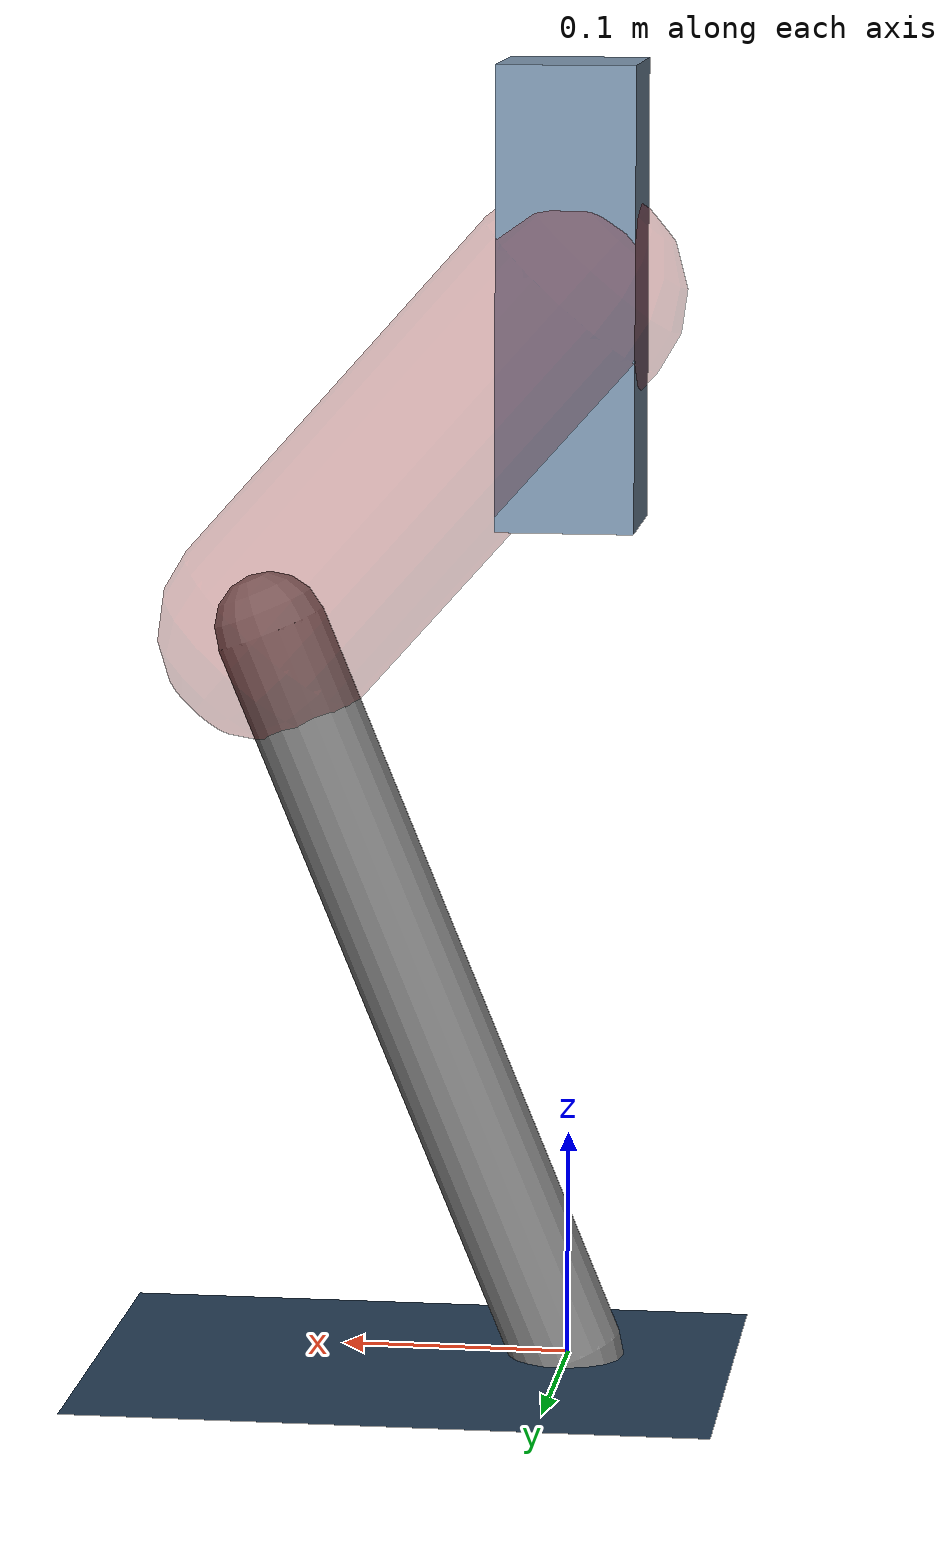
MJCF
<mujoco model="Hopper2D">
	<compiler inertiafromgeom="true" angle="radian" />
	<option timestep="0.001" integrator="implicit" cone="elliptic" solver="Newton" tolerance="1e-10" />

	<default>
		<geom contype="1" conaffinity="1" condim="3" friction="2 0.005 0.0001" solref="0.005 1" />
		<joint limited="true" damping="0.1" />
	</default>

	<asset>
		<texture name="skybox" type="skybox" builtin="gradient" rgb1=".4 .6 .8" rgb2="0 0 0" width="800" height="800" />
		<texture name="grid" type="2d" builtin="checker" rgb1=".1 .2 .3" rgb2=".2 .3 .4" width="300" height="300" mark="edge" markrgb=".2 .3 .4" />
		<material name="ground" texture="grid" texrepeat="1 1" texuniform="true" reflectance="0.1" />
		<material name="leg" rgba="0.5 0.6 0.7 1" />
	</asset>

	<worldbody>

		<geom name="floor" type="plane" size="5 5 0.25" material="ground" />

		<light directional="false" diffuse="0.8 0.8 0.8" specular="0.3 0.3 0.3" pos="0 0 2" dir="0 0 -1" />
		<light mode="targetbodycom" target="base" directional="false" diffuse="0.8 0.8 0.8" specular="0.3 0.3 0.3" pos="0 0 2" dir="0 0 -1" />

		<camera name="fixed" pos="0 -2 1" xyaxes="1 0 0 0 0 1" />
		<camera name="tracking" mode="trackcom" pos="0 -3 1" />

		<body name="root" pos="0 0 0.47079542838550154">
			<joint name="slide_x" type="slide" axis="1 0 0" range="-100 100" />
			<joint name="slide_z" type="slide" axis="0 0 1" range="0 10" />

			<body name="base" pos="0 0 0">
				<geom name="torso" type="box" size="0.03 0.03 0.1" mass="1.665" material="leg" />

				<body name="link1" pos="0 0 0" euler="0 0.8426157380698909 0">
					<joint type="hinge" axis="0 -1 0" pos="0 0 0" name="hinge1" limited="true" range="-3.14 3.14" stiffness="0" damping="0.1" />
					<geom name="thigh" type="capsule" fromto="0 0 0 0.19861872109067533 0 0" size="0.05" rgba="0.5 0 0 0.3" mass="0.7262468027266883" />

					<body name="link2" pos="0.19861872109067533 0 0" euler="0 1.1171136784125124 0">
						<joint type="hinge" axis="0 -1 0" pos="0 0 0" name="hinge2" limited="true" range="-3.14 3.14" stiffness="0" damping="0.1" />
						<geom name="shank" type="capsule" fromto="0 0 0 0.3485833400500317 0 0" size="0.025" mass="0.5227666720400254" />

					</body>
				</body>
			</body>
		</body>
	</worldbody>

	<actuator>
		<motor name="torque1" joint="hinge1" ctrlrange="-13.868977818043493 13.868977818043493" ctrllimited="true" gear="1" />
		<motor name="torque2" joint="hinge2" ctrlrange="-19.56982873074382 19.56982873074382" ctrllimited="true" gear="1" />
	</actuator>
</mujoco>
